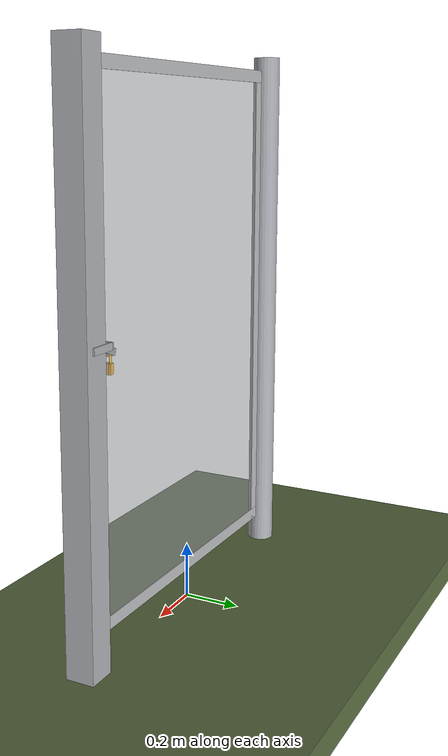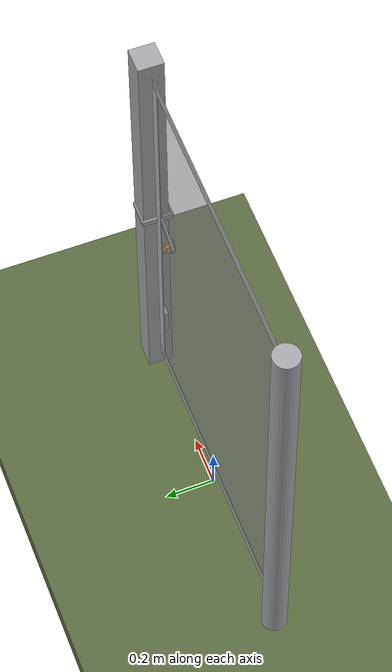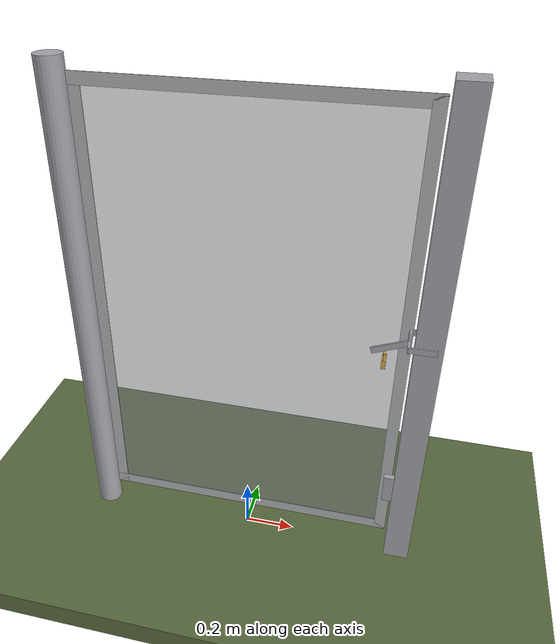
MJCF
<?xml version="1.0" ?>
<mujoco model="db0566_gate_swing_minimal">
  <compiler angle="radian" meshdir="../../hardware" texturedir="../../textures" autolimits="true" inertiafromgeom="false"/>
  <option timestep="0.002" integrator="implicitfast" cone="elliptic" impratio="10" noslip_iterations="3">
    <flag multiccd="enable"/>
  </option>
  <size memory="16M"/>
  <default>
    <geom condim="4" solref="0.005 1" solimp="0.95 0.99 0.001"/>
    <joint solreflimit="0.005 1" solimplimit="0.95 0.99 0.001"/>
    <tendon solreflimit="0.005 1"/>
    <equality solref="0.002 1"/>
  </default>
  <visual>
    <headlight ambient="0.4 0.4 0.4" diffuse="0.7 0.7 0.7" specular="0.2 0.2 0.2"/>
    <quality shadowsize="4096"/>
    <map znear="0.01" zfar="60"/>
  </visual>
  <asset>
    <material name="mat_floor" rgba="0.35 0.42 0.25 1" specular="0.2" shininess="0.15" reflectance="0"/>
    <material name="mat_wall" rgba="0.78 0.76 0.7 1" specular="0.2" shininess="0.1" reflectance="0"/>
    <material name="mat_leaf" rgba="0.7 0.71 0.72 1" specular="0.74" shininess="0.5" reflectance="0.36"/>
    <material name="mat_mesh_infill" rgba="0.6 0.62 0.64 0.55" specular="0.68" shininess="0.3" reflectance="0.1"/>
    <material name="mat_hinge" rgba="0.65 0.66 0.68 1" specular="0.74" shininess="0.5" reflectance="0.36"/>
    <material name="mat_op_steel_galvanized" rgba="0.65 0.66 0.68 1" specular="0.74" shininess="0.5" reflectance="0.36"/>
    <material name="mat_padlock" rgba="0.85 0.66 0.3 1" specular="0.8" shininess="0.75" reflectance="0.4"/>
    <material name="mat_frame" rgba="0.65 0.66 0.68 1" specular="0.74" shininess="0.5" reflectance="0.36"/>
    <material name="mat_fence_mesh" rgba="0.6 0.62 0.64 0.5" specular="0.68" shininess="0.3" reflectance="0.1"/>
    <texture name="skybox" type="skybox" builtin="gradient" rgb1="0.6 0.7 0.85" rgb2="0.9 0.92 0.95" width="256" height="256"/>
  </asset>
  <worldbody>
    <light name="sun" pos="1.5 -2.5 4" dir="-0.3 0.5 -0.8" directional="true" diffuse="0.8 0.8 0.8" specular="0.3 0.3 0.3" castshadow="true"/>
    <light name="fill" pos="-1.5 2.5 3" dir="0.3 -0.5 -0.7" directional="true" diffuse="0.35 0.35 0.4" castshadow="false"/>
    <camera name="robot_view" pos="0 -2.33125 1.56275" xyaxes="1 0 0 0 0.26963 0.962964" fovy="52"/>
    <camera name="far_view" pos="0 2.33125 1.56275" xyaxes="-1 0 0 0 -0.26963 0.962964" fovy="52"/>
    <camera name="iso" pos="1.77175 -1.95825 1.93575" xyaxes="0.741536 0.670913 0 -0.242917 0.268487 0.932151" fovy="46"/>
    <camera name="detail_handle" pos="0.766 -0.8135 1.385" xyaxes="0.97561 0.219512 0 -0.070934 0.315262 0.94635" fovy="38"/>
    <geom name="floor" type="box" size="6 6 0.05" pos="0 0 -0.05" material="mat_floor" group="0" contype="1" conaffinity="1" friction="0.8 0.005 0.0001" density="2400"/>
    <geom name="post_hinge" type="cylinder" size="0.05 0.975" pos="-0.656 0 0.975" material="mat_frame" group="0" contype="1" conaffinity="1" friction="0.6 0.005 0.0001" density="800"/>
    <geom name="post_latch" type="box" size="0.05 0.05 0.975" pos="0.656 0 0.975" material="mat_frame" group="0" contype="1" conaffinity="1" friction="0.6 0.005 0.0001" density="800"/>
    <geom name="gate_stop" type="box" size="0.02 0.012 0.06" pos="0.586 -0.0135 0.35" material="mat_frame" group="0" contype="1" conaffinity="1" friction="0.6 0.005 0.0001" density="800"/>
    <site name="approach_point" pos="0 -1.5 0" quat="1 0 0 0" size="0.05" rgba="0.2 0.9 0.2 0.5" group="4"/>
    <site name="goal_point" pos="0 1.5 0" quat="1 0 0 0" size="0.05" rgba="0.2 0.9 0.2 0.5" group="4"/>
    <site name="door_plane_center" pos="0 0 0.91" quat="1 0 0 0" size="0.02" rgba="0.2 0.9 0.2 0.5" group="4"/>
    <body name="leaf" pos="-0.606 0 0">
      <inertial pos="0.603 0 1" mass="6.924207" quat="0.5 -0.5 -0.5 -0.5" diaginertia="0.830917037 1.869557482 2.700464133"/>
      <joint name="leaf_hinge" type="hinge" axis="0 0 1" pos="0.003 0.05 0" limited="true" range="0 0.0015" damping="1.674086" frictionloss="2.892458" stiffness="5" springref="-0.8" armature="0.02"/>
      <geom name="leaf_slab_col" type="box" size="0.6 0.0015 0.9" pos="0.603 0 1" material="mat_leaf" group="3" contype="1" conaffinity="1" rgba="0.8 0.3 0.3 0.25" friction="0.45 0.005 0.0001" density="1"/>
      <geom name="leaf_rail_b" type="box" size="0.6 0.0015 0.0225" pos="0.603 0 0.1225" material="mat_leaf" group="1" contype="0" conaffinity="0" density="1"/>
      <geom name="leaf_rail_t" type="box" size="0.6 0.0015 0.0225" pos="0.603 0 1.8775" material="mat_leaf" group="1" contype="0" conaffinity="0" density="1"/>
      <geom name="leaf_stile_h" type="box" size="0.0225 0.0015 0.9" pos="0.0255 0 1" material="mat_leaf" group="1" contype="0" conaffinity="0" density="1"/>
      <geom name="leaf_stile_l" type="box" size="0.0225 0.0015 0.9" pos="1.1805 0 1" material="mat_leaf" group="1" contype="0" conaffinity="0" density="1"/>
      <geom name="leaf_mesh" type="box" size="0.555 0.0015 0.855" pos="0.603 0 1" material="mat_mesh_infill" group="1" contype="0" conaffinity="0" density="1"/>
      <site name="leaf_edge_mid" pos="1.203 0 0.9" quat="1 0 0 0" size="0.02" rgba="0.2 0.9 0.2 0.5" group="4"/>
      <body name="leaf_fork" pos="1.063 0 1">
        <inertial pos="0.085635 -0.00953 0.001337" mass="0.4472" quat="0.943164 -0.044663 -0.3272 0.037253" diaginertia="0.000580669 0.002116901 0.002275617"/>
        <joint name="leaf_fork_hinge" type="hinge" axis="0 -1 0" limited="true" range="0 0.001" damping="1.722427" frictionloss="0.02" armature="0.0001"/>
        <geom name="leaf_fork_arm" type="box" size="0.069176 0.004 0.012" pos="0.0645 -0.0135 0.025" quat="0.982958 0 -0.183833 0" material="mat_op_steel_galvanized" group="0" contype="1" conaffinity="1" friction="0.6 0.005 0.0001" density="2500"/>
        <geom name="leaf_fork_tine_n" type="box" size="0.05 0.003 0.012" pos="0.179 -0.059 0.05" material="mat_op_steel_galvanized" group="0" contype="1" conaffinity="1" friction="0.6 0.005 0.0001" density="2500"/>
        <geom name="leaf_fork_tine_p" type="box" size="0.05 0.003 0.012" pos="0.179 0.059 0.05" material="mat_op_steel_galvanized" group="0" contype="1" conaffinity="1" friction="0.6 0.005 0.0001" density="2500"/>
        <geom name="leaf_fork_bridge" type="box" size="0.004 0.062 0.012" pos="0.129 0 0.05" material="mat_op_steel_galvanized" group="0" contype="1" conaffinity="1" friction="0.6 0.005 0.0001" density="2500"/>
        <geom name="leaf_fork_handle" type="capsule" size="0.006 0.018" pos="0.129 -0.0135 0.08" material="mat_op_steel_galvanized" group="0" contype="1" conaffinity="1" friction="0.7 0.01 0.0001" density="2500"/>
        <geom name="leaf_fork_padlock_shackle" type="capsule" size="0.004 0.016" pos="0.05 -0.0135 0" quat="0.707107 -0.707107 0 0" material="mat_padlock" group="1" contype="0" conaffinity="0" density="7850"/>
        <geom name="leaf_fork_padlock_leg_a" type="capsule" size="0.004 0.012" pos="0.05 -0.0295 -0.012" quat="0 1 0 0" material="mat_padlock" group="1" contype="0" conaffinity="0" density="7850"/>
        <geom name="leaf_fork_padlock_leg_b" type="capsule" size="0.004 0.012" pos="0.05 0.0025 -0.012" quat="0 1 0 0" material="mat_padlock" group="1" contype="0" conaffinity="0" density="7850"/>
        <geom name="leaf_fork_padlock_body" type="box" size="0.022 0.018 0.008" pos="0.05 -0.0135 -0.042" quat="0.5 -0.5 -0.5 0.5" material="mat_padlock" group="0" contype="1" conaffinity="1" friction="0.6 0.005 0.0001" density="7850"/>
        <site name="leaf_fork_grip" pos="0.129 -0.0135 0.105" quat="1 0 0 0" size="0.012" rgba="0.2 0.9 0.2 0.5" group="4"/>
      </body>
    </body>
  </worldbody>
  <sensor>
    <jointpos name="leaf_hinge_pos" joint="leaf_hinge"/>
    <jointvel name="leaf_hinge_vel" joint="leaf_hinge"/>
    <jointpos name="leaf_fork_hinge_pos" joint="leaf_fork_hinge"/>
    <jointvel name="leaf_fork_hinge_vel" joint="leaf_fork_hinge"/>
  </sensor>
</mujoco>
